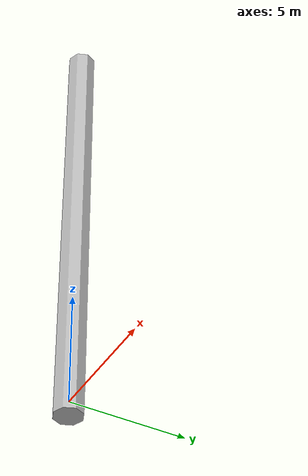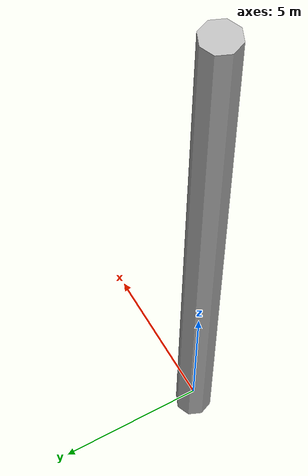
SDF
<?xml version='1.0'?>
<sdf version="1.4">
  <model name="park_tree_1">
    <static>true</static>
    <link name="link">
      <collision name="collision">
        <geometry>
          <mesh>
            <uri>model://park_tree_1/meshes/collision.dae</uri>
          </mesh>
        </geometry>
      </collision>
      <visual name="visual">
        <geometry>
          <mesh>
            <uri>model://park_tree_1/meshes/park_tree_1.dae</uri>
          </mesh>
        </geometry>
      </visual>
    </link>
  </model>
</sdf>
